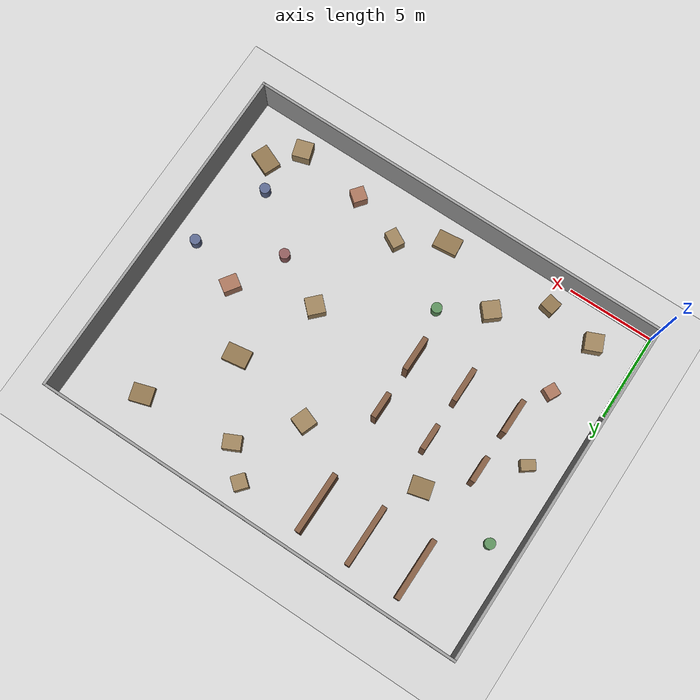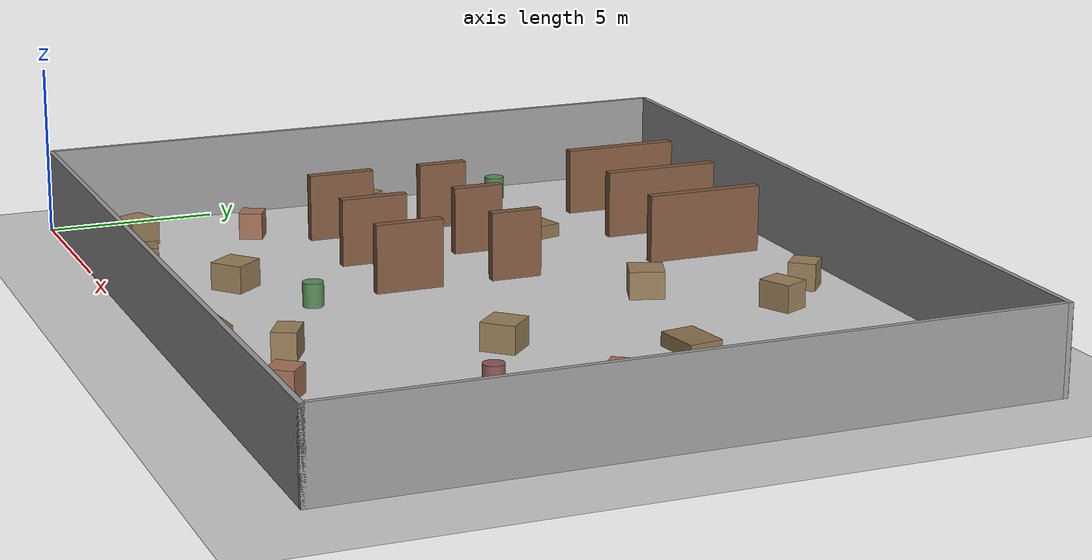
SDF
<?xml version="1.0" ?>
<sdf version="1.9">
  <world name="warehouse">

    <!-- Plugins                                        -->
    <plugin filename="gz-sim-physics-system"
            name="gz::sim::systems::Physics">
    </plugin>

    <plugin filename="gz-sim-scene-broadcaster-system"
            name="gz::sim::systems::SceneBroadcaster">
    </plugin>

    <plugin filename="gz-sim-user-commands-system"
            name="gz::sim::systems::UserCommands">
    </plugin>

    <plugin filename="gz-sim-sensors-system"
            name="gz::sim::systems::Sensors">
      <render_engine>ogre2</render_engine>
    </plugin>

    <plugin filename="gz-sim-contact-system"
            name="gz::sim::systems::Contact">
    </plugin>

    <!-- Physics                                        -->
    <physics name="fast" type="ignored">
      <max_step_size>0.004</max_step_size>
      <real_time_factor>1</real_time_factor>
    </physics>

    <!-- Scene                                          -->
    <scene>
      <ambient>0.4 0.4 0.4 1</ambient>
      <background>0.7 0.8 0.9 1</background>
      <shadows>true</shadows>
    </scene>

    <!-- Sun                                            -->
    <include>
      <uri>https://fuel.gazebosim.org/1.0/OpenRobotics/models/Sun</uri>
    </include>

    <!-- Ground Plane                                   -->
    <include>
      <uri>https://fuel.gazebosim.org/1.0/OpenRobotics/models/Ground Plane</uri>
    </include>

    <!-- OUTER WALLS                                    -->

    <!-- North wall: full width -->
    <model name="wall_north">
      <static>true</static>
      <pose>12.5 19.925 1.25 0 0 0</pose>
      <link name="link">
        <collision name="collision">
          <geometry>
            <box><size>25.0 0.15 2.5</size></box>
          </geometry>
        </collision>
        <visual name="visual">
          <geometry>
            <box><size>25.0 0.15 2.5</size></box>
          </geometry>
          <material>
            <ambient>0.6 0.6 0.6 1</ambient>
            <diffuse>0.6 0.6 0.6 1</diffuse>
          </material>
        </visual>
      </link>
    </model>

    <!-- South wall: full width (loading dock sealed) -->
    <model name="wall_south">
      <static>true</static>
      <pose>12.5 0.075 1.25 0 0 0</pose>
      <link name="link">
        <collision name="collision">
          <geometry>
            <box><size>25.0 0.15 2.5</size></box>
          </geometry>
        </collision>
        <visual name="visual">
          <geometry>
            <box><size>25.0 0.15 2.5</size></box>
          </geometry>
          <material>
            <ambient>0.6 0.6 0.6 1</ambient>
            <diffuse>0.6 0.6 0.6 1</diffuse>
          </material>
        </visual>
      </link>
    </model>

    <!-- West wall: full height -->
    <model name="wall_west">
      <static>true</static>
      <pose>0.075 10.0 1.25 0 0 0</pose>
      <link name="link">
        <collision name="collision">
          <geometry>
            <box><size>0.15 20.0 2.5</size></box>
          </geometry>
        </collision>
        <visual name="visual">
          <geometry>
            <box><size>0.15 20.0 2.5</size></box>
          </geometry>
          <material>
            <ambient>0.6 0.6 0.6 1</ambient>
            <diffuse>0.6 0.6 0.6 1</diffuse>
          </material>
        </visual>
      </link>
    </model>

    <!-- East wall: full height -->
    <model name="wall_east">
      <static>true</static>
      <pose>24.925 10.0 1.25 0 0 0</pose>
      <link name="link">
        <collision name="collision">
          <geometry>
            <box><size>0.15 20.0 2.5</size></box>
          </geometry>
        </collision>
        <visual name="visual">
          <geometry>
            <box><size>0.15 20.0 2.5</size></box>
          </geometry>
          <material>
            <ambient>0.6 0.6 0.6 1</ambient>
            <diffuse>0.6 0.6 0.6 1</diffuse>
          </material>
        </visual>
      </link>
    </model>

    <!-- (office removed) -->

    <!-- SHELF RACKS                                    -->

    <!-- ======= ROW 1 (x = 4.0) ======= -->

    <!-- Row 1, south segment A: y=7.0 to 9.0, length 2.0m -->
    <model name="shelf_row1_south_a">
      <static>true</static>
      <pose>4.0 8.0 1.0 0 0 0</pose>
      <link name="link">
        <collision name="collision">
          <geometry>
            <box><size>0.3 2.0 2.0</size></box>
          </geometry>
        </collision>
        <visual name="visual">
          <geometry>
            <box><size>0.3 2.0 2.0</size></box>
          </geometry>
          <material>
            <ambient>0.4 0.3 0.2 1</ambient>
            <diffuse>0.5 0.35 0.25 1</diffuse>
          </material>
        </visual>
      </link>
    </model>

    <!-- Row 1, south segment B: y=10.5 to 12.0, length 1.5m -->
    <model name="shelf_row1_south_b">
      <static>true</static>
      <pose>4.0 11.25 1.0 0 0 0</pose>
      <link name="link">
        <collision name="collision">
          <geometry>
            <box><size>0.3 1.5 2.0</size></box>
          </geometry>
        </collision>
        <visual name="visual">
          <geometry>
            <box><size>0.3 1.5 2.0</size></box>
          </geometry>
          <material>
            <ambient>0.4 0.3 0.2 1</ambient>
            <diffuse>0.5 0.35 0.25 1</diffuse>
          </material>
        </visual>
      </link>
    </model>

    <!-- Row 1, north segment: y=15.5 to 19.0, length 3.5m -->
    <model name="shelf_row1_north">
      <static>true</static>
      <pose>4.0 17.25 1.0 0 0 0</pose>
      <link name="link">
        <collision name="collision">
          <geometry>
            <box><size>0.3 3.5 2.0</size></box>
          </geometry>
        </collision>
        <visual name="visual">
          <geometry>
            <box><size>0.3 3.5 2.0</size></box>
          </geometry>
          <material>
            <ambient>0.4 0.3 0.2 1</ambient>
            <diffuse>0.5 0.35 0.25 1</diffuse>
          </material>
        </visual>
      </link>
    </model>

    <!-- ======= ROW 2 (x = 7.0) ======= -->

    <!-- Row 2, south segment A: y=7.0 to 9.0, length 2.0m -->
    <model name="shelf_row2_south_a">
      <static>true</static>
      <pose>7.0 8.0 1.0 0 0 0</pose>
      <link name="link">
        <collision name="collision">
          <geometry>
            <box><size>0.3 2.0 2.0</size></box>
          </geometry>
        </collision>
        <visual name="visual">
          <geometry>
            <box><size>0.3 2.0 2.0</size></box>
          </geometry>
          <material>
            <ambient>0.4 0.3 0.2 1</ambient>
            <diffuse>0.5 0.35 0.25 1</diffuse>
          </material>
        </visual>
      </link>
    </model>

    <!-- Row 2, south segment B: y=10.5 to 12.0, length 1.5m -->
    <model name="shelf_row2_south_b">
      <static>true</static>
      <pose>7.0 11.25 1.0 0 0 0</pose>
      <link name="link">
        <collision name="collision">
          <geometry>
            <box><size>0.3 1.5 2.0</size></box>
          </geometry>
        </collision>
        <visual name="visual">
          <geometry>
            <box><size>0.3 1.5 2.0</size></box>
          </geometry>
          <material>
            <ambient>0.4 0.3 0.2 1</ambient>
            <diffuse>0.5 0.35 0.25 1</diffuse>
          </material>
        </visual>
      </link>
    </model>

    <!-- Row 2, north segment: y=15.5 to 19.0, length 3.5m -->
    <model name="shelf_row2_north">
      <static>true</static>
      <pose>7.0 17.25 1.0 0 0 0</pose>
      <link name="link">
        <collision name="collision">
          <geometry>
            <box><size>0.3 3.5 2.0</size></box>
          </geometry>
        </collision>
        <visual name="visual">
          <geometry>
            <box><size>0.3 3.5 2.0</size></box>
          </geometry>
          <material>
            <ambient>0.4 0.3 0.2 1</ambient>
            <diffuse>0.5 0.35 0.25 1</diffuse>
          </material>
        </visual>
      </link>
    </model>

    <!-- ======= ROW 3 (x = 10.0) ======= -->

    <!-- Row 3, south segment A: y=7.0 to 9.0, length 2.0m -->
    <model name="shelf_row3_south_a">
      <static>true</static>
      <pose>10.0 8.0 1.0 0 0 0</pose>
      <link name="link">
        <collision name="collision">
          <geometry>
            <box><size>0.3 2.0 2.0</size></box>
          </geometry>
        </collision>
        <visual name="visual">
          <geometry>
            <box><size>0.3 2.0 2.0</size></box>
          </geometry>
          <material>
            <ambient>0.4 0.3 0.2 1</ambient>
            <diffuse>0.5 0.35 0.25 1</diffuse>
          </material>
        </visual>
      </link>
    </model>

    <!-- Row 3, south segment B: y=10.5 to 12.0, length 1.5m -->
    <model name="shelf_row3_south_b">
      <static>true</static>
      <pose>10.0 11.25 1.0 0 0 0</pose>
      <link name="link">
        <collision name="collision">
          <geometry>
            <box><size>0.3 1.5 2.0</size></box>
          </geometry>
        </collision>
        <visual name="visual">
          <geometry>
            <box><size>0.3 1.5 2.0</size></box>
          </geometry>
          <material>
            <ambient>0.4 0.3 0.2 1</ambient>
            <diffuse>0.5 0.35 0.25 1</diffuse>
          </material>
        </visual>
      </link>
    </model>

    <!-- Row 3, north segment: y=15.5 to 19.0, length 3.5m -->
    <model name="shelf_row3_north">
      <static>true</static>
      <pose>10.0 17.25 1.0 0 0 0</pose>
      <link name="link">
        <collision name="collision">
          <geometry>
            <box><size>0.3 3.5 2.0</size></box>
          </geometry>
        </collision>
        <visual name="visual">
          <geometry>
            <box><size>0.3 3.5 2.0</size></box>
          </geometry>
          <material>
            <ambient>0.4 0.3 0.2 1</ambient>
            <diffuse>0.5 0.35 0.25 1</diffuse>
          </material>
        </visual>
      </link>
    </model>

    <!-- SCATTERED CLUTTER (messy warehouse floor)       -->
    <!-- Various crates, pallets, barrels, and debris scattered
         throughout the warehouse to create challenging navigation.
         Objects have random rotations to look messy. -->

    <!-- === South area (former loading dock + staging, y=0.5..6) === -->

    <model name="crate_1">
      <static>true</static>
      <pose>2.5 2.0 0.4 0 0 0.4</pose>
      <link name="link">
        <collision name="collision"><geometry><box><size>1.0 1.0 0.8</size></box></geometry></collision>
        <visual name="visual"><geometry><box><size>1.0 1.0 0.8</size></box></geometry>
          <material><ambient>0.55 0.45 0.3 1</ambient><diffuse>0.6 0.5 0.35 1</diffuse></material></visual>
      </link>
    </model>

    <model name="crate_2">
      <static>true</static>
      <pose>5.5 1.5 0.4 0 0 -0.2</pose>
      <link name="link">
        <collision name="collision"><geometry><box><size>0.8 0.8 0.8</size></box></geometry></collision>
        <visual name="visual"><geometry><box><size>0.8 0.8 0.8</size></box></geometry>
          <material><ambient>0.5 0.4 0.25 1</ambient><diffuse>0.55 0.45 0.3 1</diffuse></material></visual>
      </link>
    </model>

    <model name="crate_3">
      <static>true</static>
      <pose>8.0 3.5 0.4 0 0 0.7</pose>
      <link name="link">
        <collision name="collision"><geometry><box><size>1.0 1.0 0.8</size></box></geometry></collision>
        <visual name="visual"><geometry><box><size>1.0 1.0 0.8</size></box></geometry>
          <material><ambient>0.55 0.45 0.3 1</ambient><diffuse>0.6 0.5 0.35 1</diffuse></material></visual>
      </link>
    </model>

    <model name="pallet_1">
      <static>true</static>
      <pose>12.0 1.5 0.2 0 0 0.1</pose>
      <link name="link">
        <collision name="collision"><geometry><box><size>1.4 1.0 0.4</size></box></geometry></collision>
        <visual name="visual"><geometry><box><size>1.4 1.0 0.4</size></box></geometry>
          <material><ambient>0.5 0.4 0.25 1</ambient><diffuse>0.55 0.45 0.3 1</diffuse></material></visual>
      </link>
    </model>

    <model name="crate_4">
      <static>true</static>
      <pose>14.5 3.0 0.4 0 0 -0.5</pose>
      <link name="link">
        <collision name="collision"><geometry><box><size>1.0 0.7 0.8</size></box></geometry></collision>
        <visual name="visual"><geometry><box><size>1.0 0.7 0.8</size></box></geometry>
          <material><ambient>0.55 0.45 0.3 1</ambient><diffuse>0.6 0.5 0.35 1</diffuse></material></visual>
      </link>
    </model>

    <model name="crate_5">
      <static>true</static>
      <pose>17.5 2.0 0.4 0 0 0.9</pose>
      <link name="link">
        <collision name="collision"><geometry><box><size>0.8 0.8 0.8</size></box></geometry></collision>
        <visual name="visual"><geometry><box><size>0.8 0.8 0.8</size></box></geometry>
          <material><ambient>0.6 0.4 0.3 1</ambient><diffuse>0.65 0.45 0.35 1</diffuse></material></visual>
      </link>
    </model>

    <!-- Former office area (SE corner, now open with junk) -->
    <model name="crate_6">
      <static>true</static>
      <pose>21.5 1.5 0.4 0 0 0.3</pose>
      <link name="link">
        <collision name="collision"><geometry><box><size>1.0 1.0 0.8</size></box></geometry></collision>
        <visual name="visual"><geometry><box><size>1.0 1.0 0.8</size></box></geometry>
          <material><ambient>0.55 0.45 0.3 1</ambient><diffuse>0.6 0.5 0.35 1</diffuse></material></visual>
      </link>
    </model>

    <model name="pallet_2">
      <static>true</static>
      <pose>23.0 3.0 0.2 0 0 -0.4</pose>
      <link name="link">
        <collision name="collision"><geometry><box><size>1.4 1.0 0.4</size></box></geometry></collision>
        <visual name="visual"><geometry><box><size>1.4 1.0 0.4</size></box></geometry>
          <material><ambient>0.5 0.4 0.25 1</ambient><diffuse>0.55 0.45 0.3 1</diffuse></material></visual>
      </link>
    </model>

    <model name="barrel_1">
      <static>true</static>
      <pose>22.0 4.5 0.35 0 0 0</pose>
      <link name="link">
        <collision name="collision"><geometry><cylinder><radius>0.3</radius><length>0.7</length></cylinder></geometry></collision>
        <visual name="visual"><geometry><cylinder><radius>0.3</radius><length>0.7</length></cylinder></geometry>
          <material><ambient>0.3 0.35 0.5 1</ambient><diffuse>0.35 0.4 0.55 1</diffuse></material></visual>
      </link>
    </model>

    <!-- === Aisle clutter (between and around shelves, y=7..19) === -->

    <!-- West aisle clutter -->
    <model name="crate_7">
      <static>true</static>
      <pose>2.0 9.5 0.4 0 0 0.6</pose>
      <link name="link">
        <collision name="collision"><geometry><box><size>0.8 0.6 0.8</size></box></geometry></collision>
        <visual name="visual"><geometry><box><size>0.8 0.6 0.8</size></box></geometry>
          <material><ambient>0.55 0.45 0.3 1</ambient><diffuse>0.6 0.5 0.35 1</diffuse></material></visual>
      </link>
    </model>

    <model name="barrel_2">
      <static>true</static>
      <pose>1.5 14.0 0.35 0 0 0</pose>
      <link name="link">
        <collision name="collision"><geometry><cylinder><radius>0.3</radius><length>0.7</length></cylinder></geometry></collision>
        <visual name="visual"><geometry><cylinder><radius>0.3</radius><length>0.7</length></cylinder></geometry>
          <material><ambient>0.3 0.5 0.3 1</ambient><diffuse>0.35 0.55 0.35 1</diffuse></material></visual>
      </link>
    </model>

    <!-- Central aisle clutter -->
    <model name="pallet_3">
      <static>true</static>
      <pose>6.0 13.5 0.2 0 0 0.25</pose>
      <link name="link">
        <collision name="collision"><geometry><box><size>1.2 1.0 0.4</size></box></geometry></collision>
        <visual name="visual"><geometry><box><size>1.2 1.0 0.4</size></box></geometry>
          <material><ambient>0.5 0.4 0.25 1</ambient><diffuse>0.55 0.45 0.3 1</diffuse></material></visual>
      </link>
    </model>

    <model name="crate_8">
      <static>true</static>
      <pose>13.0 14.0 0.4 0 0 -0.35</pose>
      <link name="link">
        <collision name="collision"><geometry><box><size>1.0 1.0 0.8</size></box></geometry></collision>
        <visual name="visual"><geometry><box><size>1.0 1.0 0.8</size></box></geometry>
          <material><ambient>0.55 0.45 0.3 1</ambient><diffuse>0.6 0.5 0.35 1</diffuse></material></visual>
      </link>
    </model>

    <!-- East open floor clutter -->
    <model name="crate_9">
      <static>true</static>
      <pose>16.0 8.5 0.4 0 0 0.8</pose>
      <link name="link">
        <collision name="collision"><geometry><box><size>1.0 1.0 0.8</size></box></geometry></collision>
        <visual name="visual"><geometry><box><size>1.0 1.0 0.8</size></box></geometry>
          <material><ambient>0.55 0.45 0.3 1</ambient><diffuse>0.6 0.5 0.35 1</diffuse></material></visual>
      </link>
    </model>

    <model name="barrel_3">
      <static>true</static>
      <pose>19.0 7.0 0.35 0 0 0</pose>
      <link name="link">
        <collision name="collision"><geometry><cylinder><radius>0.3</radius><length>0.7</length></cylinder></geometry></collision>
        <visual name="visual"><geometry><cylinder><radius>0.3</radius><length>0.7</length></cylinder></geometry>
          <material><ambient>0.5 0.3 0.3 1</ambient><diffuse>0.55 0.35 0.35 1</diffuse></material></visual>
      </link>
    </model>

    <model name="crate_10">
      <static>true</static>
      <pose>20.5 10.0 0.4 0 0 -0.6</pose>
      <link name="link">
        <collision name="collision"><geometry><box><size>0.8 1.0 0.8</size></box></geometry></collision>
        <visual name="visual"><geometry><box><size>0.8 1.0 0.8</size></box></geometry>
          <material><ambient>0.6 0.4 0.3 1</ambient><diffuse>0.65 0.45 0.35 1</diffuse></material></visual>
      </link>
    </model>

    <model name="pallet_4">
      <static>true</static>
      <pose>18.0 13.0 0.2 0 0 0.15</pose>
      <link name="link">
        <collision name="collision"><geometry><box><size>1.4 1.0 0.4</size></box></geometry></collision>
        <visual name="visual"><geometry><box><size>1.4 1.0 0.4</size></box></geometry>
          <material><ambient>0.5 0.4 0.25 1</ambient><diffuse>0.55 0.45 0.3 1</diffuse></material></visual>
      </link>
    </model>

    <model name="crate_11">
      <static>true</static>
      <pose>15.5 17.0 0.4 0 0 0.45</pose>
      <link name="link">
        <collision name="collision"><geometry><box><size>1.0 0.8 0.8</size></box></geometry></collision>
        <visual name="visual"><geometry><box><size>1.0 0.8 0.8</size></box></geometry>
          <material><ambient>0.55 0.45 0.3 1</ambient><diffuse>0.6 0.5 0.35 1</diffuse></material></visual>
      </link>
    </model>

    <model name="barrel_4">
      <static>true</static>
      <pose>23.5 9.0 0.35 0 0 0</pose>
      <link name="link">
        <collision name="collision"><geometry><cylinder><radius>0.3</radius><length>0.7</length></cylinder></geometry></collision>
        <visual name="visual"><geometry><cylinder><radius>0.3</radius><length>0.7</length></cylinder></geometry>
          <material><ambient>0.3 0.35 0.5 1</ambient><diffuse>0.35 0.4 0.55 1</diffuse></material></visual>
      </link>
    </model>

    <!-- North area clutter -->
    <model name="crate_12">
      <static>true</static>
      <pose>14.0 18.5 0.4 0 0 -0.7</pose>
      <link name="link">
        <collision name="collision"><geometry><box><size>0.8 0.8 0.8</size></box></geometry></collision>
        <visual name="visual"><geometry><box><size>0.8 0.8 0.8</size></box></geometry>
          <material><ambient>0.55 0.45 0.3 1</ambient><diffuse>0.6 0.5 0.35 1</diffuse></material></visual>
      </link>
    </model>

    <model name="pallet_5">
      <static>true</static>
      <pose>21.0 17.5 0.2 0 0 0.3</pose>
      <link name="link">
        <collision name="collision"><geometry><box><size>1.2 1.0 0.4</size></box></geometry></collision>
        <visual name="visual"><geometry><box><size>1.2 1.0 0.4</size></box></geometry>
          <material><ambient>0.5 0.4 0.25 1</ambient><diffuse>0.55 0.45 0.3 1</diffuse></material></visual>
      </link>
    </model>

    <model name="crate_13">
      <static>true</static>
      <pose>3.0 5.5 0.4 0 0 1.1</pose>
      <link name="link">
        <collision name="collision"><geometry><box><size>0.7 0.7 0.8</size></box></geometry></collision>
        <visual name="visual"><geometry><box><size>0.7 0.7 0.8</size></box></geometry>
          <material><ambient>0.6 0.4 0.3 1</ambient><diffuse>0.65 0.45 0.35 1</diffuse></material></visual>
      </link>
    </model>

    <model name="barrel_5">
      <static>true</static>
      <pose>10.5 5.0 0.35 0 0 0</pose>
      <link name="link">
        <collision name="collision"><geometry><cylinder><radius>0.3</radius><length>0.7</length></cylinder></geometry></collision>
        <visual name="visual"><geometry><cylinder><radius>0.3</radius><length>0.7</length></cylinder></geometry>
          <material><ambient>0.3 0.5 0.3 1</ambient><diffuse>0.35 0.55 0.35 1</diffuse></material></visual>
      </link>
    </model>

  </world>
</sdf>
